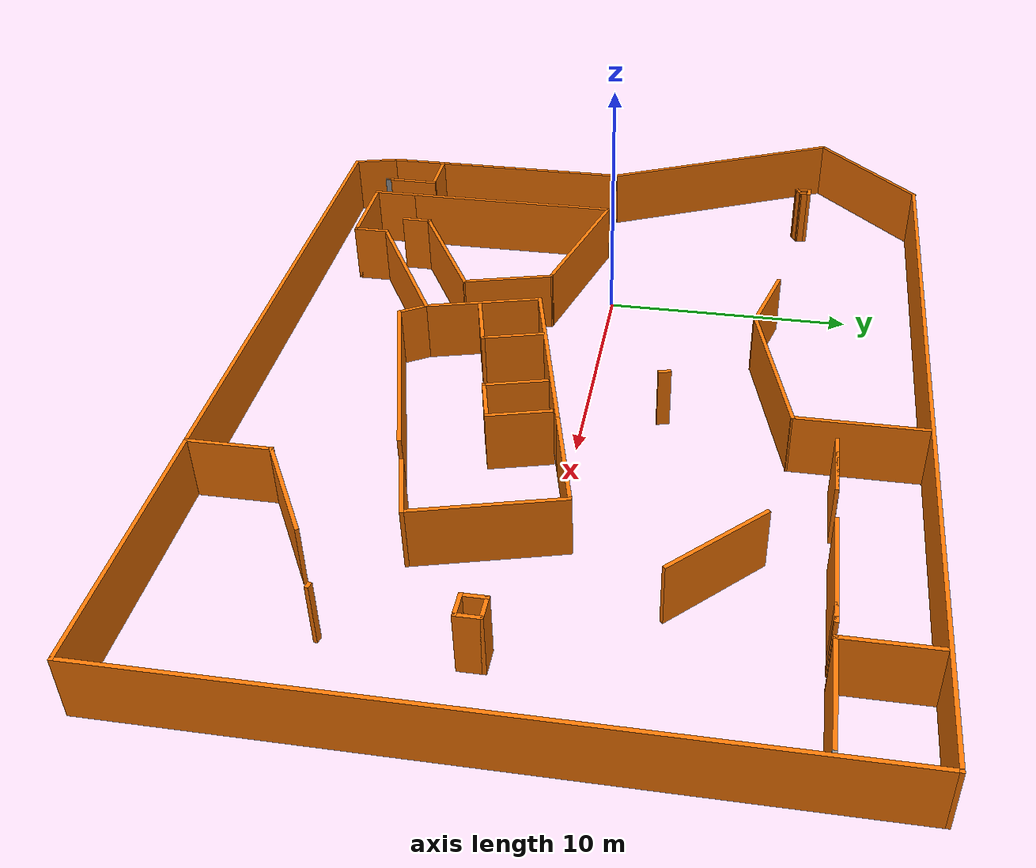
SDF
<?xml version='1.0'?>
<sdf version='1.6'>
  <model name='building'>
    <pose frame=''>6.55263 -0.164586 0 0 -0 0</pose>
    <link name='Wall_0'>
      <collision name='Wall_0_Collision'>
        <geometry>
          <box>
            <size>9 0.15 2.5</size>
          </box>
        </geometry>
        <pose frame=''>0 0 1.25 0 -0 0</pose>
      </collision>
      <visual name='Wall_0_Visual'>
        <pose frame=''>0 0 1.25 0 -0 0</pose>
        <geometry>
          <box>
            <size>9 0.15 2.5</size>
          </box>
        </geometry>
        <material>
          <script>
            <uri>file://media/materials/scripts/gazebo.material</uri>
            <name>Gazebo/Grey</name>
          </script>
          <ambient>0.996078 0.47451 0.0196078 1</ambient>
        </material>
      </visual>
      <pose frame=''>-10.5026 -5.02041 0 0 -0 1.5708</pose>
    </link>
    <link name='Wall_1'>
      <collision name='Wall_1_Collision'>
        <geometry>
          <box>
            <size>6.25 0.15 2.5</size>
          </box>
        </geometry>
        <pose frame=''>0 0 1.25 0 -0 0</pose>
      </collision>
      <visual name='Wall_1_Visual'>
        <pose frame=''>0 0 1.25 0 -0 0</pose>
        <geometry>
          <box>
            <size>6.25 0.15 2.5</size>
          </box>
        </geometry>
        <material>
          <script>
            <uri>file://media/materials/scripts/gazebo.material</uri>
            <name>Gazebo/Grey</name>
          </script>
          <ambient>0.996078 0.47451 0.0196078 1</ambient>
        </material>
      </visual>
      <pose frame=''>-7.55655 -1.38481 0 0 0 -0.261799</pose>
    </link>
    <link name='Wall_10'>
      <collision name='Wall_10_Collision'>
        <geometry>
          <box>
            <size>6.5 0.15 2.5</size>
          </box>
        </geometry>
        <pose frame=''>0 0 1.25 0 -0 0</pose>
      </collision>
      <visual name='Wall_10_Visual'>
        <pose frame=''>0 0 1.25 0 -0 0</pose>
        <geometry>
          <box>
            <size>6.5 0.15 2.5</size>
          </box>
        </geometry>
        <material>
          <script>
            <uri>file://media/materials/scripts/gazebo.material</uri>
            <name>Gazebo/Grey</name>
          </script>
          <ambient>0.996078 0.47451 0.0196078 1</ambient>
        </material>
      </visual>
      <pose frame=''>-4.403 -8.35791 0 0 -0 0.523599</pose>
    </link>
    <link name='Wall_11'>
      <collision name='Wall_11_Collision'>
        <geometry>
          <box>
            <size>4.75 0.15 2.5</size>
          </box>
        </geometry>
        <pose frame=''>0 0 1.25 0 -0 0</pose>
      </collision>
      <visual name='Wall_11_Visual'>
        <pose frame=''>0 0 1.25 0 -0 0</pose>
        <geometry>
          <box>
            <size>4.75 0.15 2.5</size>
          </box>
        </geometry>
        <material>
          <script>
            <uri>file://media/materials/scripts/gazebo.material</uri>
            <name>Gazebo/Grey</name>
          </script>
          <ambient>0.996078 0.47451 0.0196078 1</ambient>
        </material>
      </visual>
      <pose frame=''>-2.24865 -4.54878 0 0 -0 1.8326</pose>
    </link>
    <link name='Wall_12'>
      <collision name='Wall_12_Collision'>
        <geometry>
          <box>
            <size>8 0.15 2.5</size>
          </box>
        </geometry>
        <pose frame=''>0 0 1.25 0 -0 0</pose>
      </collision>
      <visual name='Wall_12_Visual'>
        <pose frame=''>0 0 1.25 0 -0 0</pose>
        <geometry>
          <box>
            <size>8 0.15 2.5</size>
          </box>
        </geometry>
        <material>
          <script>
            <uri>file://media/materials/scripts/gazebo.material</uri>
            <name>Gazebo/Grey</name>
          </script>
          <ambient>0.996078 0.47451 0.0196078 1</ambient>
        </material>
      </visual>
      <pose frame=''>0.947326 -1.31129 0 0 -0 0.261799</pose>
    </link>
    <link name='Wall_13'>
      <collision name='Wall_13_Collision'>
        <geometry>
          <box>
            <size>4.5 0.15 2.5</size>
          </box>
        </geometry>
        <pose frame=''>0 0 1.25 0 -0 0</pose>
      </collision>
      <visual name='Wall_13_Visual'>
        <pose frame=''>0 0 1.25 0 -0 0</pose>
        <geometry>
          <box>
            <size>4.5 0.15 2.5</size>
          </box>
        </geometry>
        <material>
          <script>
            <uri>file://media/materials/scripts/gazebo.material</uri>
            <name>Gazebo/Grey</name>
          </script>
          <ambient>0.996078 0.47451 0.0196078 1</ambient>
        </material>
      </visual>
      <pose frame=''>6.83947 0.267506 0 0 -0 0.261799</pose>
    </link>
    <link name='Wall_14'>
      <collision name='Wall_14_Collision'>
        <geometry>
          <box>
            <size>5.75 0.15 2.5</size>
          </box>
        </geometry>
        <pose frame=''>0 0 1.25 0 -0 0</pose>
      </collision>
      <visual name='Wall_14_Visual'>
        <pose frame=''>0 0 1.25 0 -0 0</pose>
        <geometry>
          <box>
            <size>5.75 0.15 2.5</size>
          </box>
        </geometry>
        <material>
          <script>
            <uri>file://media/materials/scripts/gazebo.material</uri>
            <name>Gazebo/Grey</name>
          </script>
          <ambient>0.996078 0.47451 0.0196078 1</ambient>
        </material>
      </visual>
      <pose frame=''>9.66506 -1.87416 0 0 0 -1.309</pose>
    </link>
    <link name='Wall_15'>
      <collision name='Wall_15_Collision'>
        <geometry>
          <box>
            <size>2.75 0.15 2.5</size>
          </box>
        </geometry>
        <pose frame=''>0 0 1.25 0 -0 0</pose>
      </collision>
      <visual name='Wall_15_Visual'>
        <pose frame=''>0 0 1.25 0 -0 0</pose>
        <geometry>
          <box>
            <size>2.75 0.15 2.5</size>
          </box>
        </geometry>
        <material>
          <script>
            <uri>file://media/materials/scripts/gazebo.material</uri>
            <name>Gazebo/Grey</name>
          </script>
          <ambient>0.996078 0.47451 0.0196078 1</ambient>
        </material>
      </visual>
      <pose frame=''>9.13405 -4.91521 0 0 0 -2.87979</pose>
    </link>
    <link name='Wall_19'>
      <collision name='Wall_19_Collision'>
        <geometry>
          <box>
            <size>8.25 0.15 2.5</size>
          </box>
        </geometry>
        <pose frame=''>0 0 1.25 0 -0 0</pose>
      </collision>
      <visual name='Wall_19_Visual'>
        <pose frame=''>0 0 1.25 0 -0 0</pose>
        <geometry>
          <box>
            <size>8.25 0.15 2.5</size>
          </box>
        </geometry>
        <material>
          <script>
            <uri>file://media/materials/scripts/gazebo.material</uri>
            <name>Gazebo/Grey</name>
          </script>
          <ambient>0.996078 0.47451 0.0196078 1</ambient>
        </material>
      </visual>
      <pose frame=''>2.84602 -6.68249 0 0 0 -2.87979</pose>
    </link>
    <link name='Wall_2'>
      <collision name='Wall_2_Collision'>
        <geometry>
          <box>
            <size>3.75 0.15 2.5</size>
          </box>
        </geometry>
        <pose frame=''>0 0 1.25 0 -0 0</pose>
      </collision>
      <visual name='Wall_2_Visual'>
        <pose frame=''>0 0 1.25 0 -0 0</pose>
        <geometry>
          <box>
            <size>3.75 0.15 2.5</size>
          </box>
        </geometry>
        <material>
          <script>
            <uri>file://media/materials/scripts/gazebo.material</uri>
            <name>Gazebo/Grey</name>
          </script>
          <ambient>0.996078 0.47451 0.0196078 1</ambient>
        </material>
      </visual>
      <pose frame=''>-4.14461 -3.91288 0 0 0 -1.309</pose>
    </link>
    <link name='Wall_20'>
      <collision name='Wall_20_Collision'>
        <geometry>
          <box>
            <size>1.27569 0.15 2.5</size>
          </box>
        </geometry>
        <pose frame=''>0 0 1.25 0 -0 0</pose>
      </collision>
      <visual name='Wall_20_Visual'>
        <pose frame=''>0 0 1.25 0 -0 0</pose>
        <geometry>
          <box>
            <size>1.27569 0.15 2.5</size>
          </box>
        </geometry>
        <material>
          <script>
            <uri>file://media/materials/scripts/gazebo.material</uri>
            <name>Gazebo/Grey</name>
          </script>
          <ambient>0.996078 0.47451 0.0196078 1</ambient>
        </material>
      </visual>
      <pose frame=''>-1.35967 -7.25056 0 0 -0 2.11976</pose>
    </link>
    <link name='Wall_23'>
      <collision name='Wall_23_Collision'>
        <geometry>
          <box>
            <size>2.5 0.15 2.5</size>
          </box>
        </geometry>
        <pose frame=''>0 0 1.25 0 -0 0</pose>
      </collision>
      <visual name='Wall_23_Visual'>
        <pose frame=''>0 0 1.25 0 -0 0</pose>
        <geometry>
          <box>
            <size>2.5 0.15 2.5</size>
          </box>
        </geometry>
        <material>
          <script>
            <uri>file://media/materials/scripts/gazebo.material</uri>
            <name>Gazebo/Grey</name>
          </script>
          <ambient>0.996078 0.47451 0.0196078 1</ambient>
        </material>
      </visual>
      <pose frame=''>2.86184 -2.21723 0 0 0 -1.309</pose>
    </link>
    <link name='Wall_24'>
      <collision name='Wall_24_Collision'>
        <geometry>
          <box>
            <size>2 0.15 2.5</size>
          </box>
        </geometry>
        <pose frame=''>0 0 1.25 0 -0 0</pose>
      </collision>
      <visual name='Wall_24_Visual'>
        <pose frame=''>0 0 1.25 0 -0 0</pose>
        <geometry>
          <box>
            <size>2 0.15 2.5</size>
          </box>
        </geometry>
        <material>
          <script>
            <uri>file://media/materials/scripts/gazebo.material</uri>
            <name>Gazebo/Grey</name>
          </script>
          <ambient>0.996078 0.47451 0.0196078 1</ambient>
        </material>
      </visual>
      <pose frame=''>4.05943 -3.11278 0 0 -0 0.261799</pose>
    </link>
    <link name='Wall_25'>
      <collision name='Wall_25_Collision'>
        <geometry>
          <box>
            <size>2.5 0.15 2.5</size>
          </box>
        </geometry>
        <pose frame=''>0 0 1.25 0 -0 0</pose>
      </collision>
      <visual name='Wall_25_Visual'>
        <pose frame=''>0 0 1.25 0 -0 0</pose>
        <geometry>
          <box>
            <size>2.5 0.15 2.5</size>
          </box>
        </geometry>
        <material>
          <script>
            <uri>file://media/materials/scripts/gazebo.material</uri>
            <name>Gazebo/Grey</name>
          </script>
          <ambient>0.996078 0.47451 0.0196078 1</ambient>
        </material>
      </visual>
      <pose frame=''>4.6488 -1.73841 0 0 -0 1.8326</pose>
    </link>
    <link name='Wall_27'>
      <collision name='Wall_27_Collision'>
        <geometry>
          <box>
            <size>2.5 0.15 2.5</size>
          </box>
        </geometry>
        <pose frame=''>0 0 1.25 0 -0 0</pose>
      </collision>
      <visual name='Wall_27_Visual'>
        <pose frame=''>0 0 1.25 0 -0 0</pose>
        <geometry>
          <box>
            <size>2.5 0.15 2.5</size>
          </box>
        </geometry>
        <material>
          <script>
            <uri>file://media/materials/scripts/gazebo.material</uri>
            <name>Gazebo/Grey</name>
          </script>
          <ambient>0.996078 0.47451 0.0196078 1</ambient>
        </material>
      </visual>
      <pose frame=''>-0.117383 -2.90883 0 0 0 -1.309</pose>
    </link>
    <link name='Wall_28'>
      <collision name='Wall_28_Collision'>
        <geometry>
          <box>
            <size>2.5 0.15 2.5</size>
          </box>
        </geometry>
        <pose frame=''>0 0 1.25 0 -0 0</pose>
      </collision>
      <visual name='Wall_28_Visual'>
        <pose frame=''>0 0 1.25 0 -0 0</pose>
        <geometry>
          <box>
            <size>2.5 0.15 2.5</size>
          </box>
        </geometry>
        <material>
          <script>
            <uri>file://media/materials/scripts/gazebo.material</uri>
            <name>Gazebo/Grey</name>
          </script>
          <ambient>0.996078 0.47451 0.0196078 1</ambient>
        </material>
      </visual>
      <pose frame=''>-0.948234 -4.34791 0 0 0 -2.87979</pose>
    </link>
    <link name='Wall_3'>
      <collision name='Wall_3_Collision'>
        <geometry>
          <box>
            <size>5.5 0.15 2.5</size>
          </box>
        </geometry>
        <pose frame=''>0 0 1.25 0 -0 0</pose>
      </collision>
      <visual name='Wall_3_Visual'>
        <pose frame=''>0 0 1.25 0 -0 0</pose>
        <geometry>
          <box>
            <size>5.5 0.15 2.5</size>
          </box>
        </geometry>
        <material>
          <script>
            <uri>file://media/materials/scripts/gazebo.material</uri>
            <name>Gazebo/Grey</name>
          </script>
          <ambient>0.996078 0.47451 0.0196078 1</ambient>
        </material>
      </visual>
      <pose frame=''>-5.99535 -6.98904 0 0 0 -2.61799</pose>
    </link>
    <link name='Wall_30'>
      <collision name='Wall_30_Collision'>
        <geometry>
          <box>
            <size>10.75 0.15 2.5</size>
          </box>
        </geometry>
        <pose frame=''>0 0 1.25 0 -0 0</pose>
      </collision>
      <visual name='Wall_30_Visual'>
        <pose frame=''>0 0 1.25 0 -0 0</pose>
        <geometry>
          <box>
            <size>10.75 0.15 2.5</size>
          </box>
        </geometry>
        <material>
          <script>
            <uri>file://media/materials/scripts/gazebo.material</uri>
            <name>Gazebo/Grey</name>
          </script>
          <ambient>0.996078 0.47451 0.0196078 1</ambient>
        </material>
      </visual>
      <pose frame=''>-13.695 -5.97014 0 0 -0 1.5708</pose>
    </link>
    <link name='Wall_32'>
      <collision name='Wall_32_Collision'>
        <geometry>
          <box>
            <size>2 0.15 2.5</size>
          </box>
        </geometry>
        <pose frame=''>0 0 1.25 0 -0 0</pose>
      </collision>
      <visual name='Wall_32_Visual'>
        <pose frame=''>0 0 1.25 0 -0 0</pose>
        <geometry>
          <box>
            <size>2 0.15 2.5</size>
          </box>
        </geometry>
        <material>
          <script>
            <uri>file://media/materials/scripts/gazebo.material</uri>
            <name>Gazebo/Grey</name>
          </script>
          <ambient>0.996078 0.47451 0.0196078 1</ambient>
        </material>
      </visual>
      <pose frame=''>-12.6902 -8.95593 0 0 -0 0</pose>
    </link>
    <link name='Wall_33'>
      <collision name='Wall_33_Collision'>
        <geometry>
          <box>
            <size>2.25 0.15 2.5</size>
          </box>
        </geometry>
        <pose frame=''>0 0 1.25 0 -0 0</pose>
      </collision>
      <visual name='Wall_33_Visual'>
        <pose frame=''>0 0 1.25 0 -0 0</pose>
        <geometry>
          <box>
            <size>2.25 0.15 2.5</size>
          </box>
        </geometry>
        <material>
          <script>
            <uri>file://media/materials/scripts/gazebo.material</uri>
            <name>Gazebo/Grey</name>
          </script>
          <ambient>0.996078 0.47451 0.0196078 1</ambient>
        </material>
      </visual>
      <pose frame=''>-11.7652 -10.0059 0 0 0 -1.5708</pose>
    </link>
    <link name='Wall_34'>
      <collision name='Wall_34_Collision'>
        <geometry>
          <box>
            <size>0.25 0.15 2.5</size>
          </box>
        </geometry>
        <pose frame=''>0 0 1.25 0 -0 0</pose>
      </collision>
      <visual name='Wall_34_Visual'>
        <pose frame=''>0 0 1.25 0 -0 0</pose>
        <geometry>
          <box>
            <size>0.25 0.15 2.5</size>
          </box>
        </geometry>
        <material>
          <script>
            <uri>file://media/materials/scripts/gazebo.material</uri>
            <name>Gazebo/Grey</name>
          </script>
          <ambient>1 1 1 1</ambient>
        </material>
      </visual>
      <pose frame=''>-11.7652 -11.1059 0 0 0 -1.5708</pose>
    </link>
    <link name='Wall_36'>
      <collision name='Wall_36_Collision'>
        <geometry>
          <box>
            <size>0.25 0.15 2.5</size>
          </box>
        </geometry>
        <pose frame=''>0 0 1.25 0 -0 0</pose>
      </collision>
      <visual name='Wall_36_Visual'>
        <pose frame=''>0 0 1.25 0 -0 0</pose>
        <geometry>
          <box>
            <size>0.25 0.15 2.5</size>
          </box>
        </geometry>
        <material>
          <script>
            <uri>file://media/materials/scripts/gazebo.material</uri>
            <name>Gazebo/Grey</name>
          </script>
          <ambient>0.996078 0.47451 0.0196078 1</ambient>
        </material>
      </visual>
      <pose frame=''>-11.7652 -11.1059 0 0 -0 1.5708</pose>
    </link>
    <link name='Wall_38'>
      <collision name='Wall_38_Collision'>
        <geometry>
          <box>
            <size>2 0.15 2.5</size>
          </box>
        </geometry>
        <pose frame=''>0 0 1.25 0 -0 0</pose>
      </collision>
      <visual name='Wall_38_Visual'>
        <pose frame=''>0 0 1.25 0 -0 0</pose>
        <geometry>
          <box>
            <size>2 0.15 2.5</size>
          </box>
        </geometry>
        <material>
          <script>
            <uri>file://media/materials/scripts/gazebo.material</uri>
            <name>Gazebo/Grey</name>
          </script>
          <ambient>0.996078 0.47451 0.0196078 1</ambient>
        </material>
      </visual>
      <pose frame=''>-13.4556 -12.1636 0 0 0 -1.309</pose>
    </link>
    <link name='Wall_39'>
      <collision name='Wall_39_Collision'>
        <geometry>
          <box>
            <size>31.5 0.15 2.5</size>
          </box>
        </geometry>
        <pose frame=''>0 0 1.25 0 -0 0</pose>
      </collision>
      <visual name='Wall_39_Visual'>
        <pose frame=''>0 0 1.25 0 -0 0</pose>
        <geometry>
          <box>
            <size>31.5 0.15 2.5</size>
          </box>
        </geometry>
        <material>
          <script>
            <uri>file://media/materials/scripts/gazebo.material</uri>
            <name>Gazebo/Grey</name>
          </script>
          <ambient>0.996078 0.47451 0.0196078 1</ambient>
        </material>
      </visual>
      <pose frame=''>2.45882 -13.0571 0 0 -0 0</pose>
    </link>
    <link name='Wall_4'>
      <collision name='Wall_4_Collision'>
        <geometry>
          <box>
            <size>1.25 0.15 2.5</size>
          </box>
        </geometry>
        <pose frame=''>0 0 1.25 0 -0 0</pose>
      </collision>
      <visual name='Wall_4_Visual'>
        <pose frame=''>0 0 1.25 0 -0 0</pose>
        <geometry>
          <box>
            <size>1.25 0.15 2.5</size>
          </box>
        </geometry>
        <material>
          <script>
            <uri>file://media/materials/scripts/gazebo.material</uri>
            <name>Gazebo/Grey</name>
          </script>
          <ambient>0.996078 0.47451 0.0196078 1</ambient>
        </material>
      </visual>
      <pose frame=''>-8.31197 -8.87654 0 0 0 -1.5708</pose>
    </link>
    <link name='Wall_40'>
      <collision name='Wall_40_Collision'>
        <geometry>
          <box>
            <size>26.25 0.15 2.5</size>
          </box>
        </geometry>
        <pose frame=''>0 0 1.25 0 -0 0</pose>
      </collision>
      <visual name='Wall_40_Visual'>
        <pose frame=''>0 0 1.25 0 -0 0</pose>
        <geometry>
          <box>
            <size>26.25 0.15 2.5</size>
          </box>
        </geometry>
        <material>
          <script>
            <uri>file://media/materials/scripts/gazebo.material</uri>
            <name>Gazebo/Grey</name>
          </script>
          <ambient>0.996078 0.47451 0.0196078 1</ambient>
        </material>
      </visual>
      <pose frame=''>18.1338 -0.007105 0 0 -0 1.5708</pose>
    </link>
    <link name='Wall_41'>
      <collision name='Wall_41_Collision'>
        <geometry>
          <box>
            <size>32.25 0.15 2.5</size>
          </box>
        </geometry>
        <pose frame=''>0 0 1.25 0 -0 0</pose>
      </collision>
      <visual name='Wall_41_Visual'>
        <pose frame=''>0 0 1.25 0 -0 0</pose>
        <geometry>
          <box>
            <size>32.25 0.15 2.5</size>
          </box>
        </geometry>
        <material>
          <script>
            <uri>file://media/materials/scripts/gazebo.material</uri>
            <name>Gazebo/Grey</name>
          </script>
          <ambient>0.996078 0.47451 0.0196078 1</ambient>
        </material>
      </visual>
      <pose frame=''>2.08382 13.0429 0 0 -0 3.14159</pose>
    </link>
    <link name='Wall_42'>
      <collision name='Wall_42_Collision'>
        <geometry>
          <box>
            <size>6 0.15 2.5</size>
          </box>
        </geometry>
        <pose frame=''>0 0 1.25 0 -0 0</pose>
      </collision>
      <visual name='Wall_42_Visual'>
        <pose frame=''>0 0 1.25 0 -0 0</pose>
        <geometry>
          <box>
            <size>6 0.15 2.5</size>
          </box>
        </geometry>
        <material>
          <script>
            <uri>file://media/materials/scripts/gazebo.material</uri>
            <name>Gazebo/Grey</name>
          </script>
          <ambient>0.996078 0.47451 0.0196078 1</ambient>
        </material>
      </visual>
      <pose frame=''>-16.0345 10.9746 0 0 0 -2.35619</pose>
    </link>
    <link name='Wall_43'>
      <collision name='Wall_43_Collision'>
        <geometry>
          <box>
            <size>10.6922 0.15 2.5</size>
          </box>
        </geometry>
        <pose frame=''>0 0 1.25 0 -0 0</pose>
      </collision>
      <visual name='Wall_43_Visual'>
        <pose frame=''>0 0 1.25 0 -0 0</pose>
        <geometry>
          <box>
            <size>10.6922 0.15 2.5</size>
          </box>
        </geometry>
        <material>
          <script>
            <uri>file://media/materials/scripts/gazebo.material</uri>
            <name>Gazebo/Grey</name>
          </script>
          <ambient>0.996078 0.47451 0.0196078 1</ambient>
        </material>
      </visual>
      <pose frame=''>-15.8989 4.11809 0 0 0 -1.13943</pose>
    </link>
    <link name='Wall_45'>
      <collision name='Wall_45_Collision'>
        <geometry>
          <box>
            <size>5 0.15 2.5</size>
          </box>
        </geometry>
        <pose frame=''>0 0 1.25 0 -0 0</pose>
      </collision>
      <visual name='Wall_45_Visual'>
        <pose frame=''>0 0 1.25 0 -0 0</pose>
        <geometry>
          <box>
            <size>5 0.15 2.5</size>
          </box>
        </geometry>
        <material>
          <script>
            <uri>file://media/materials/scripts/gazebo.material</uri>
            <name>Gazebo/Grey</name>
          </script>
          <ambient>0.996078 0.47451 0.0196078 1</ambient>
        </material>
      </visual>
      <pose frame=''>3.40884 10.4836 0 0 0 -1.5708</pose>
    </link>
    <link name='Wall_46'>
      <collision name='Wall_46_Collision'>
        <geometry>
          <box>
            <size>6.5 0.15 2.5</size>
          </box>
        </geometry>
        <pose frame=''>0 0 1.25 0 -0 0</pose>
      </collision>
      <visual name='Wall_46_Visual'>
        <pose frame=''>0 0 1.25 0 -0 0</pose>
        <geometry>
          <box>
            <size>6.5 0.15 2.5</size>
          </box>
        </geometry>
        <material>
          <script>
            <uri>file://media/materials/scripts/gazebo.material</uri>
            <name>Gazebo/Grey</name>
          </script>
          <ambient>0.996078 0.47451 0.0196078 1</ambient>
        </material>
      </visual>
      <pose frame=''>0.342024 7.23687 0 0 0 -2.87979</pose>
    </link>
    <link name='Wall_47'>
      <collision name='Wall_47_Collision'>
        <geometry>
          <box>
            <size>3.25 0.15 2.5</size>
          </box>
        </geometry>
        <pose frame=''>0 0 1.25 0 -0 0</pose>
      </collision>
      <visual name='Wall_47_Visual'>
        <pose frame=''>0 0 1.25 0 -0 0</pose>
        <geometry>
          <box>
            <size>3.25 0.15 2.5</size>
          </box>
        </geometry>
        <material>
          <script>
            <uri>file://media/materials/scripts/gazebo.material</uri>
            <name>Gazebo/Grey</name>
          </script>
          <ambient>0.996078 0.47451 0.0196078 1</ambient>
        </material>
      </visual>
      <pose frame=''>-4.22197 6.81629 0 0 -0 2.87979</pose>
    </link>
    <link name='Wall_49'>
      <collision name='Wall_49_Collision'>
        <geometry>
          <box>
            <size>4.5 0.15 2.5</size>
          </box>
        </geometry>
        <pose frame=''>0 0 1.25 0 -0 0</pose>
      </collision>
      <visual name='Wall_49_Visual'>
        <pose frame=''>0 0 1.25 0 -0 0</pose>
        <geometry>
          <box>
            <size>4.5 0.15 2.5</size>
          </box>
        </geometry>
        <material>
          <script>
            <uri>file://media/materials/scripts/gazebo.material</uri>
            <name>Gazebo/Grey</name>
          </script>
          <ambient>0.996078 0.47451 0.0196078 1</ambient>
        </material>
      </visual>
      <pose frame=''>10.1049 5.86558 0 0 0 -0.785398</pose>
    </link>
    <link name='Wall_51'>
      <collision name='Wall_51_Collision'>
        <geometry>
          <box>
            <size>1 0.15 2.5</size>
          </box>
        </geometry>
        <pose frame=''>0 0 1.25 0 -0 0</pose>
      </collision>
      <visual name='Wall_51_Visual'>
        <pose frame=''>0 0 1.25 0 -0 0</pose>
        <geometry>
          <box>
            <size>1 0.15 2.5</size>
          </box>
        </geometry>
        <material>
          <script>
            <uri>file://media/materials/scripts/gazebo.material</uri>
            <name>Gazebo/Grey</name>
          </script>
          <ambient>0.996078 0.47451 0.0196078 1</ambient>
        </material>
      </visual>
      <pose frame=''>13.7945 -1.37162 0 0 0 -1.5708</pose>
    </link>
    <link name='Wall_52'>
      <collision name='Wall_52_Collision'>
        <geometry>
          <box>
            <size>1 0.15 2.5</size>
          </box>
        </geometry>
        <pose frame=''>0 0 1.25 0 -0 0</pose>
      </collision>
      <visual name='Wall_52_Visual'>
        <pose frame=''>0 0 1.25 0 -0 0</pose>
        <geometry>
          <box>
            <size>1 0.15 2.5</size>
          </box>
        </geometry>
        <material>
          <script>
            <uri>file://media/materials/scripts/gazebo.material</uri>
            <name>Gazebo/Grey</name>
          </script>
          <ambient>0.996078 0.47451 0.0196078 1</ambient>
        </material>
      </visual>
      <pose frame=''>14.2195 -1.79662 0 0 -0 0</pose>
    </link>
    <link name='Wall_53'>
      <collision name='Wall_53_Collision'>
        <geometry>
          <box>
            <size>1 0.15 2.5</size>
          </box>
        </geometry>
        <pose frame=''>0 0 1.25 0 -0 0</pose>
      </collision>
      <visual name='Wall_53_Visual'>
        <pose frame=''>0 0 1.25 0 -0 0</pose>
        <geometry>
          <box>
            <size>1 0.15 2.5</size>
          </box>
        </geometry>
        <material>
          <script>
            <uri>file://media/materials/scripts/gazebo.material</uri>
            <name>Gazebo/Grey</name>
          </script>
          <ambient>0.996078 0.47451 0.0196078 1</ambient>
        </material>
      </visual>
      <pose frame=''>14.6445 -1.37162 0 0 -0 1.5708</pose>
    </link>
    <link name='Wall_54'>
      <collision name='Wall_54_Collision'>
        <geometry>
          <box>
            <size>1 0.15 2.5</size>
          </box>
        </geometry>
        <pose frame=''>0 0 1.25 0 -0 0</pose>
      </collision>
      <visual name='Wall_54_Visual'>
        <pose frame=''>0 0 1.25 0 -0 0</pose>
        <geometry>
          <box>
            <size>1 0.15 2.5</size>
          </box>
        </geometry>
        <material>
          <script>
            <uri>file://media/materials/scripts/gazebo.material</uri>
            <name>Gazebo/Grey</name>
          </script>
          <ambient>0.996078 0.47451 0.0196078 1</ambient>
        </material>
      </visual>
      <pose frame=''>14.2195 -0.946615 0 0 -0 3.14159</pose>
    </link>
    <link name='Wall_56'>
      <collision name='Wall_56_Collision'>
        <geometry>
          <box>
            <size>0.25 0.15 2.5</size>
          </box>
        </geometry>
        <pose frame=''>0 0 1.25 0 -0 0</pose>
      </collision>
      <visual name='Wall_56_Visual'>
        <pose frame=''>0 0 1.25 0 -0 0</pose>
        <geometry>
          <box>
            <size>0.25 0.15 2.5</size>
          </box>
        </geometry>
        <material>
          <script>
            <uri>file://media/materials/scripts/gazebo.material</uri>
            <name>Gazebo/Grey</name>
          </script>
          <ambient>0.996078 0.47451 0.0196078 1</ambient>
        </material>
      </visual>
      <pose frame=''>14.1203 -6.55716 0 0 0 -0.261799</pose>
    </link>
    <link name='Wall_58'>
      <collision name='Wall_58_Collision'>
        <geometry>
          <box>
            <size>3.25 0.15 2.5</size>
          </box>
        </geometry>
        <pose frame=''>0 0 1.25 0 -0 0</pose>
      </collision>
      <visual name='Wall_58_Visual'>
        <pose frame=''>0 0 1.25 0 -0 0</pose>
        <geometry>
          <box>
            <size>3.25 0.15 2.5</size>
          </box>
        </geometry>
        <material>
          <script>
            <uri>file://media/materials/scripts/gazebo.material</uri>
            <name>Gazebo/Grey</name>
          </script>
          <ambient>0.996078 0.47451 0.0196078 1</ambient>
        </material>
      </visual>
      <pose frame=''>7.94244 -11.4708 0 0 -0 1.5708</pose>
    </link>
    <link name='Wall_59'>
      <collision name='Wall_59_Collision'>
        <geometry>
          <box>
            <size>4.5 0.15 2.5</size>
          </box>
        </geometry>
        <pose frame=''>0 0 1.25 0 -0 0</pose>
      </collision>
      <visual name='Wall_59_Visual'>
        <pose frame=''>0 0 1.25 0 -0 0</pose>
        <geometry>
          <box>
            <size>4.5 0.15 2.5</size>
          </box>
        </geometry>
        <material>
          <script>
            <uri>file://media/materials/scripts/gazebo.material</uri>
            <name>Gazebo/Grey</name>
          </script>
          <ambient>0.996078 0.47451 0.0196078 1</ambient>
        </material>
      </visual>
      <pose frame=''>9.82604 -8.83329 0 0 -0 0.523599</pose>
    </link>
    <link name='Wall_61'>
      <collision name='Wall_61_Collision'>
        <geometry>
          <box>
            <size>0.5 0.15 2.5</size>
          </box>
        </geometry>
        <pose frame=''>0 0 1.25 0 -0 0</pose>
      </collision>
      <visual name='Wall_61_Visual'>
        <pose frame=''>0 0 1.25 0 -0 0</pose>
        <geometry>
          <box>
            <size>0.5 0.15 2.5</size>
          </box>
        </geometry>
        <material>
          <script>
            <uri>file://media/materials/scripts/gazebo.material</uri>
            <name>Gazebo/Grey</name>
          </script>
          <ambient>0.996078 0.47451 0.0196078 1</ambient>
        </material>
      </visual>
      <pose frame=''>1.32612 3.20977 0 0 0 -1.309</pose>
    </link>
    <link name='Wall_63'>
      <collision name='Wall_63_Collision'>
        <geometry>
          <box>
            <size>0.5 0.15 2.5</size>
          </box>
        </geometry>
        <pose frame=''>0 0 1.25 0 -0 0</pose>
      </collision>
      <visual name='Wall_63_Visual'>
        <pose frame=''>0 0 1.25 0 -0 0</pose>
        <geometry>
          <box>
            <size>0.5 0.15 2.5</size>
          </box>
        </geometry>
        <material>
          <script>
            <uri>file://media/materials/scripts/gazebo.material</uri>
            <name>Gazebo/Grey</name>
          </script>
          <ambient>0.996078 0.47451 0.0196078 1</ambient>
        </material>
      </visual>
      <pose frame=''>-13.4865 8.30563 0 0 -0 0</pose>
    </link>
    <link name='Wall_64'>
      <collision name='Wall_64_Collision'>
        <geometry>
          <box>
            <size>0.5 0.15 2.5</size>
          </box>
        </geometry>
        <pose frame=''>0 0 1.25 0 -0 0</pose>
      </collision>
      <visual name='Wall_64_Visual'>
        <pose frame=''>0 0 1.25 0 -0 0</pose>
        <geometry>
          <box>
            <size>0.5 0.15 2.5</size>
          </box>
        </geometry>
        <material>
          <script>
            <uri>file://media/materials/scripts/gazebo.material</uri>
            <name>Gazebo/Grey</name>
          </script>
          <ambient>0.996078 0.47451 0.0196078 1</ambient>
        </material>
      </visual>
      <pose frame=''>-13.3116 8.13063 0 0 0 -1.5708</pose>
    </link>
    <link name='Wall_65'>
      <collision name='Wall_65_Collision'>
        <geometry>
          <box>
            <size>0.5 0.15 2.5</size>
          </box>
        </geometry>
        <pose frame=''>0 0 1.25 0 -0 0</pose>
      </collision>
      <visual name='Wall_65_Visual'>
        <pose frame=''>0 0 1.25 0 -0 0</pose>
        <geometry>
          <box>
            <size>0.5 0.15 2.5</size>
          </box>
        </geometry>
        <material>
          <script>
            <uri>file://media/materials/scripts/gazebo.material</uri>
            <name>Gazebo/Grey</name>
          </script>
          <ambient>0.996078 0.47451 0.0196078 1</ambient>
        </material>
      </visual>
      <pose frame=''>-13.4631 7.86813 0 0 0 -2.61799</pose>
    </link>
    <link name='Wall_66'>
      <collision name='Wall_66_Collision'>
        <geometry>
          <box>
            <size>0.67709 0.15 2.5</size>
          </box>
        </geometry>
        <pose frame=''>0 0 1.25 0 -0 0</pose>
      </collision>
      <visual name='Wall_66_Visual'>
        <pose frame=''>0 0 1.25 0 -0 0</pose>
        <geometry>
          <box>
            <size>0.67709 0.15 2.5</size>
          </box>
        </geometry>
        <material>
          <script>
            <uri>file://media/materials/scripts/gazebo.material</uri>
            <name>Gazebo/Grey</name>
          </script>
          <ambient>0.996078 0.47451 0.0196078 1</ambient>
        </material>
      </visual>
      <pose frame=''>-13.6381 8.04313 0 0 -0 1.65988</pose>
    </link>
    <link name='Wall_68'>
      <collision name='Wall_68_Collision'>
        <geometry>
          <box>
            <size>3.5 0.15 2.5</size>
          </box>
        </geometry>
        <pose frame=''>0 0 1.25 0 -0 0</pose>
      </collision>
      <visual name='Wall_68_Visual'>
        <pose frame=''>0 0 1.25 0 -0 0</pose>
        <geometry>
          <box>
            <size>3.5 0.15 2.5</size>
          </box>
        </geometry>
        <material>
          <script>
            <uri>file://media/materials/scripts/gazebo.material</uri>
            <name>Gazebo/Grey</name>
          </script>
          <ambient>0.996078 0.47451 0.0196078 1</ambient>
        </material>
      </visual>
      <pose frame=''>13.7945 11.3261 0 0 0 -1.5708</pose>
    </link>
    <link name='Wall_69'>
      <collision name='Wall_69_Collision'>
        <geometry>
          <box>
            <size>4.25 0.15 2.5</size>
          </box>
        </geometry>
        <pose frame=''>0 0 1.25 0 -0 0</pose>
      </collision>
      <visual name='Wall_69_Visual'>
        <pose frame=''>0 0 1.25 0 -0 0</pose>
        <geometry>
          <box>
            <size>4.25 0.15 2.5</size>
          </box>
        </geometry>
        <material>
          <script>
            <uri>file://media/materials/scripts/gazebo.material</uri>
            <name>Gazebo/Grey</name>
          </script>
          <ambient>0.996078 0.47451 0.0196078 1</ambient>
        </material>
      </visual>
      <pose frame=''>15.8445 9.65114 0 0 -0 0</pose>
    </link>
    <link name='Wall_7'>
      <collision name='Wall_7_Collision'>
        <geometry>
          <box>
            <size>2 0.15 2.5</size>
          </box>
        </geometry>
        <pose frame=''>0 0 1.25 0 -0 0</pose>
      </collision>
      <visual name='Wall_7_Visual'>
        <pose frame=''>0 0 1.25 0 -0 0</pose>
        <geometry>
          <box>
            <size>2 0.15 2.5</size>
          </box>
        </geometry>
        <material>
          <script>
            <uri>file://media/materials/scripts/gazebo.material</uri>
            <name>Gazebo/Grey</name>
          </script>
          <ambient>0.996078 0.47451 0.0196078 1</ambient>
        </material>
      </visual>
      <pose frame=''>-10.5026 -10.3704 0 0 0 -1.5708</pose>
    </link>
    <link name='Wall_71'>
      <collision name='Wall_71_Collision'>
        <geometry>
          <box>
            <size>0.25 0.15 2.5</size>
          </box>
        </geometry>
        <pose frame=''>0 0 1.25 0 -0 0</pose>
      </collision>
      <visual name='Wall_71_Visual'>
        <pose frame=''>0 0 1.25 0 -0 0</pose>
        <geometry>
          <box>
            <size>0.25 0.15 2.5</size>
          </box>
        </geometry>
        <material>
          <script>
            <uri>file://media/materials/scripts/gazebo.material</uri>
            <name>Gazebo/Grey</name>
          </script>
          <ambient>1 1 1 1</ambient>
        </material>
      </visual>
      <pose frame=''>17.9445 9.65114 0 0 -0 0</pose>
    </link>
    <link name='Wall_73'>
      <collision name='Wall_73_Collision'>
        <geometry>
          <box>
            <size>4 0.15 2.5</size>
          </box>
        </geometry>
        <pose frame=''>0 0 1.25 0 -0 0</pose>
      </collision>
      <visual name='Wall_73_Visual'>
        <pose frame=''>0 0 1.25 0 -0 0</pose>
        <geometry>
          <box>
            <size>4 0.15 2.5</size>
          </box>
        </geometry>
        <material>
          <script>
            <uri>file://media/materials/scripts/gazebo.material</uri>
            <name>Gazebo/Grey</name>
          </script>
          <ambient>0.996078 0.47451 0.0196078 1</ambient>
        </material>
      </visual>
      <pose frame=''>10.5048 9.67033 0 0 -0 3.14159</pose>
    </link>
    <link name='Wall_76'>
      <collision name='Wall_76_Collision'>
        <geometry>
          <box>
            <size>0.75 0.15 2.5</size>
          </box>
        </geometry>
        <pose frame=''>0 0 1.25 0 -0 0</pose>
      </collision>
      <visual name='Wall_76_Visual'>
        <pose frame=''>0 0 1.25 0 -0 0</pose>
        <geometry>
          <box>
            <size>0.75 0.15 2.5</size>
          </box>
        </geometry>
        <material>
          <script>
            <uri>file://media/materials/scripts/gazebo.material</uri>
            <name>Gazebo/Grey</name>
          </script>
          <ambient>0.996078 0.47451 0.0196078 1</ambient>
        </material>
      </visual>
      <pose frame=''>12.7298 9.67033 0 0 -0 0</pose>
    </link>
    <link name='Wall_77'>
      <collision name='Wall_77_Collision'>
        <geometry>
          <box>
            <size>0.25 0.15 2.5</size>
          </box>
        </geometry>
        <pose frame=''>0 0 1.25 0 -0 0</pose>
      </collision>
      <visual name='Wall_77_Visual'>
        <pose frame=''>0 0 1.25 0 -0 0</pose>
        <geometry>
          <box>
            <size>0.25 0.15 2.5</size>
          </box>
        </geometry>
        <material>
          <script>
            <uri>file://media/materials/scripts/gazebo.material</uri>
            <name>Gazebo/Grey</name>
          </script>
          <ambient>0.996078 0.47451 0.0196078 1</ambient>
        </material>
      </visual>
      <pose frame=''>13.0798 9.67033 0 0 -0 0</pose>
    </link>
    <link name='Wall_79'>
      <collision name='Wall_79_Collision'>
        <geometry>
          <box>
            <size>2 0.15 2.5</size>
          </box>
        </geometry>
        <pose frame=''>0 0 1.25 0 -0 0</pose>
      </collision>
      <visual name='Wall_79_Visual'>
        <pose frame=''>0 0 1.25 0 -0 0</pose>
        <geometry>
          <box>
            <size>2 0.15 2.5</size>
          </box>
        </geometry>
        <material>
          <script>
            <uri>file://media/materials/scripts/gazebo.material</uri>
            <name>Gazebo/Grey</name>
          </script>
          <ambient>0.996078 0.47451 0.0196078 1</ambient>
        </material>
      </visual>
      <pose frame=''>6.11813 9.66613 0 0 -0 0</pose>
    </link>
    <link name='Wall_8'>
      <collision name='Wall_8_Collision'>
        <geometry>
          <box>
            <size>3.5 0.15 2.5</size>
          </box>
        </geometry>
        <pose frame=''>0 0 1.25 0 -0 0</pose>
      </collision>
      <visual name='Wall_8_Visual'>
        <pose frame=''>0 0 1.25 0 -0 0</pose>
        <geometry>
          <box>
            <size>3.5 0.15 2.5</size>
          </box>
        </geometry>
        <material>
          <script>
            <uri>file://media/materials/scripts/gazebo.material</uri>
            <name>Gazebo/Grey</name>
          </script>
          <ambient>0.996078 0.47451 0.0196078 1</ambient>
        </material>
      </visual>
      <pose frame=''>-8.82763 -11.2954 0 0 -0 0</pose>
    </link>
    <link name='Wall_80'>
      <collision name='Wall_80_Collision'>
        <geometry>
          <box>
            <size>2.75 0.15 2.5</size>
          </box>
        </geometry>
        <pose frame=''>0 0 1.25 0 -0 0</pose>
      </collision>
      <visual name='Wall_80_Visual'>
        <pose frame=''>0 0 1.25 0 -0 0</pose>
        <geometry>
          <box>
            <size>2.75 0.15 2.5</size>
          </box>
        </geometry>
        <material>
          <script>
            <uri>file://media/materials/scripts/gazebo.material</uri>
            <name>Gazebo/Grey</name>
          </script>
          <ambient>0.996078 0.47451 0.0196078 1</ambient>
        </material>
      </visual>
      <pose frame=''>5.74313 9.66613 0 0 -0 3.14159</pose>
    </link>
    <link name='Wall_9'>
      <collision name='Wall_9_Collision'>
        <geometry>
          <box>
            <size>1.5 0.15 2.5</size>
          </box>
        </geometry>
        <pose frame=''>0 0 1.25 0 -0 0</pose>
      </collision>
      <visual name='Wall_9_Visual'>
        <pose frame=''>0 0 1.25 0 -0 0</pose>
        <geometry>
          <box>
            <size>1.5 0.15 2.5</size>
          </box>
        </geometry>
        <material>
          <script>
            <uri>file://media/materials/scripts/gazebo.material</uri>
            <name>Gazebo/Grey</name>
          </script>
          <ambient>0.996078 0.47451 0.0196078 1</ambient>
        </material>
      </visual>
      <pose frame=''>-7.15263 -10.6204 0 0 -0 1.5708</pose>
    </link>
    <static>1</static>
  </model>
</sdf>
